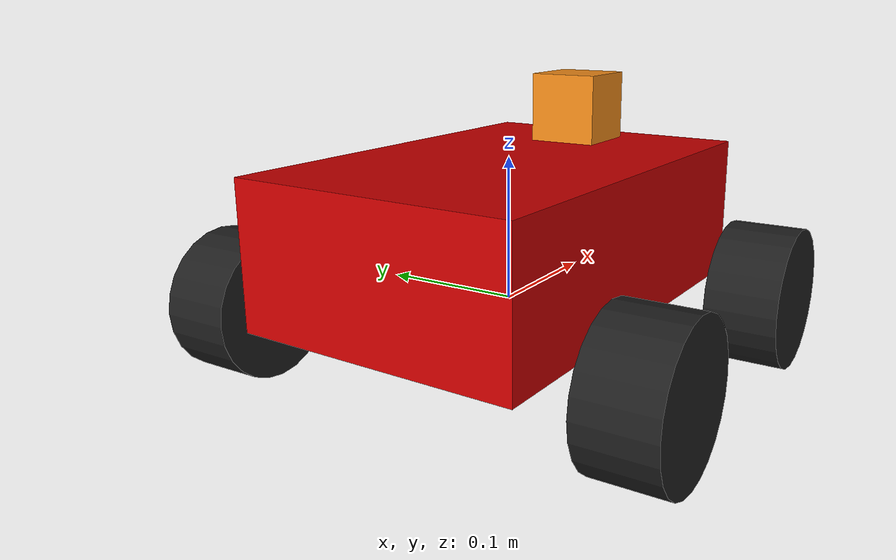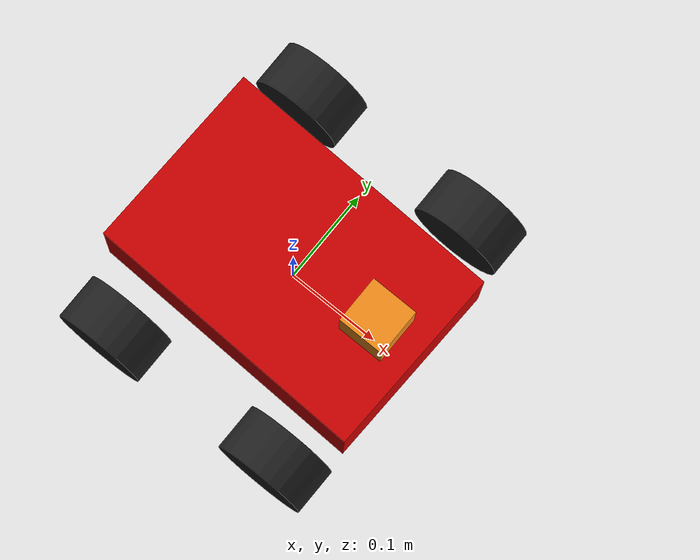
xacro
<?xml version="1.0"?>

<robot xmlns:xacro="http://www.ros.org/wiki/xacro" xmlns:sensor="http://playerstage.sourceforge.net/gazebo/xmlschema/#sensor" xmlns:controller="http://playerstage.sourceforge.net/gazebo/xmlschema/#controller" xmlns:interface="http://playerstage.sourceforge.net/gazebo/xmlschema/#interface" name="robot1_xacro">
    <gazebo reference="base_link">
        <material>Gazebo/Red</material>
    </gazebo>
    <gazebo reference="wheel_1">
        <material>Gazebo/Black</material>
    </gazebo>
    <gazebo reference="wheel_2">
        <material>Gazebo/Black</material>
    </gazebo>
    <gazebo reference="wheel_3">
        <material>Gazebo/Black</material>
    </gazebo>
    <gazebo reference="wheel_4">
        <material>Gazebo/Black</material>
    </gazebo>
    <gazebo reference="lidar_link">
        <material>Gazebo/Orange</material>
    </gazebo>
    <gazebo reference="camera_link">
        <material>Gazebo/Orange</material>
    </gazebo>

    <!-- 定义变量 -->
    <!-- 使用方法：length="${length_wheel}" -->
    <xacro:property name="length_wheel" value="0.05" />
    <xacro:property name="radius_wheel" value="0.05" />

    <!-- 与宏函数类似 -->
    <xacro:macro name="default_inertial" params="mass">
        <inertial>
            <mass value="${mass}" />
            <inertia ixx="1.0" ixy="0.0" ixz="0.0" iyy="1.0" iyz="0.0" izz="1.0" />
        </inertial>
    </xacro:macro>

    <link name="base_footprint">
        <visual>
            <geometry>
                <box size="0.001 0.001 0.001" />
            </geometry>
            <origin rpy="0 0 0" xyz="0 0 0" />
        </visual>
        <xacro:default_inertial mass="0.0001" />
    </link>

    <gazebo reference="base_footprint">
        <material>Gazebo/Green</material>
        <turnGravityOff>false</turnGravityOff>
    </gazebo>

    <joint name="base_footprint_joint" type="fixed">
        <origin xyz="0 0 0" />
        <parent link="base_footprint" />
        <child link="base_link" />
    </joint>

    <link name="base_link">
        <visual>
            <geometry>
                <box size="0.2 .3 .1" />
            </geometry>
            <origin rpy="0 0 1.54" xyz="0 0 0.05" />
            <material name="Red">
                <color rgba="0.8 0 0 1" />
            </material>
        </visual>

        <collision>
            <geometry>
                <box size="0.2 .3 0.1" />
            </geometry>
        </collision>

        <xacro:default_inertial mass="10" />

    </link>

    <link name="wheel_1">
        <visual>
            <geometry>
                <cylinder length="${length_wheel}" radius="${radius_wheel}" />
            </geometry>
            <origin rpy="0 0 0" xyz="0 0 0" />
            <material name="Black">
            </material>
        </visual>
        <collision>
            <geometry>
                <cylinder length="${length_wheel}" radius="${radius_wheel}" />
            </geometry>
        </collision>
        <xacro:default_inertial mass="1" />
    </link>

    <link name="wheel_2">
        <visual>
            <geometry>
                <cylinder length="${length_wheel}" radius="${radius_wheel}" />
            </geometry>
            <origin rpy="0 0 0" xyz="0 0 0" />
            <material name="Black" />
        </visual>
        <collision>
            <geometry>
                <cylinder length="${length_wheel}" radius="${radius_wheel}" />
            </geometry>
        </collision>
        <xacro:default_inertial mass="1" />

    </link>

    <link name="wheel_3">
        <visual>
            <geometry>
                <cylinder length="${length_wheel}" radius="${radius_wheel}" />
            </geometry>

            <origin rpy="0 0 0" xyz="0 0 0" />
            <material name="Black" />
        </visual>
        <collision>
            <geometry>
                <cylinder length="${length_wheel}" radius="${radius_wheel}" />
            </geometry>
        </collision>
        <xacro:default_inertial mass="1" />
    </link>

    <link name="wheel_4">
        <visual>
            <geometry>
                <cylinder length="${length_wheel}" radius="${radius_wheel}" />
            </geometry>
            <origin rpy="0 0 0" xyz="0 0 0" />
            <material name="Black" />
        </visual>
        <collision>
            <geometry>
                <cylinder length="${length_wheel}" radius="${radius_wheel}" />
            </geometry>
        </collision>
        <xacro:default_inertial mass="1" />

    </link>

    <joint name="base_to_wheel1" type="continuous">
        <parent link="base_link" />
        <child link="wheel_1" />
        <origin rpy="-1.5707 0 0" xyz="0.1 0.15 0" />
        <axis xyz="0 0 1" />
    </joint>

    <joint name="base_to_wheel2" type="continuous">
        <parent link="base_link" />
        <child link="wheel_2" />
        <origin rpy="-1.5707 0 0" xyz="-0.1 0.15 0" />
        <axis xyz="0 0 1" />
        <anchor xyz="0 0 0" />
        <limit effort="100" velocity="100" />
    </joint>

    <joint name="base_to_wheel3" type="continuous">
        <parent link="base_link" />
        <child link="wheel_3" />
        <origin rpy="-1.5707 0 0" xyz="0.1 -0.15 0" />
        <axis xyz="0 0 1" />

    </joint>

    <joint name="base_to_wheel4" type="continuous">
        <parent link="base_link" />
        <child link="wheel_4" />
        <origin rpy="-1.5707 0 0" xyz="-0.1 -0.15 0" />
        <axis xyz="0 0 1" />
    </joint>

    <!-- sensor lidar -->

    <!-- sensor camera  -->

    <link name="camera_link">
        <collision>
            <origin xyz="0.1 0 0.1" rpy="0 0 0" />
            <geometry>
                <box size="0.05 0.05 0.1" />
            </geometry>
        </collision>
        <visual>
            <origin xyz="0.1 0 0.1" rpy="0 0 0" />
            <geometry>
                <box size="0.05 0.05 0.1" />
            </geometry>
        </visual>
        <inertial>
            <mass value="1e-5" />
            <origin xyz="0 0 0" rpy="0 0 0" />
            <inertia ixx="1e-6" ixy="0" ixz="0" iyy="0" iyz="0" izz="1e-6" />
        </inertial>
    </link>

    <gazebo reference="camera_link">
        <sensor name="camera" type="camera">
            <update_rate>30.0</update_rate>
            <visualize>true</visualize>
            <camera>
                <horizontal_fov>1.047</horizontal_fov>
                <image>
                    <width>1280</width>
                    <height>720</height>
                </image>
                <clip>
                    <near>0.1</near>
                    <far>100</far>
                </clip>
                <noise>
                    <type>gaussian</type>
                    <mean>0.0</mean>
                    <stddev>0.001</stddev>
                </noise>

            </camera>
            <plugin name="gazebo_camera" filename="libgazebo_ros_camera.so">
                <alwaysOn>true</alwaysOn>
                <updateRate>0.0</updateRate>
                <cameraName>/camera</cameraName>
                <imageTopicName>image_raw</imageTopicName>
                <cameraInfoTopicName>camera_info</cameraInfoTopicName>
                <frameName>camera_link</frameName>
            </plugin>
        </sensor>
    </gazebo>

    <joint name="camera_joint" type="fixed">
        <origin xyz="0 0 0" />
        <parent link="base_link" />
        <child link="camera_link" />
        <material name="Orange"></material>
    </joint>

    <!-- robot driver -->
    <gazebo>
        <plugin name="skid_steer_drive_controller" filename="libgazebo_ros_skid_steer_drive.so">
          <updateRate>100.0</updateRate>
          <robotNamespace></robotNamespace>
          <leftFrontJoint>base_to_wheel1</leftFrontJoint>
          <rightFrontJoint>base_to_wheel3</rightFrontJoint>
          <leftRearJoint>base_to_wheel2</leftRearJoint>
          <rightRearJoint>base_to_wheel4</rightRearJoint>
          <wheelSeparation>4</wheelSeparation>
          <wheelDiameter>0.1</wheelDiameter>
          <commandTopic>cmd_vel</commandTopic>
          <odometryTopic>odom</odometryTopic>
          <robotBaseFrame>base_footprint</robotBaseFrame>
          <odometryFrame>odom</odometryFrame>
          <torque>1</torque>
          <topicName>cmd_vel</topicName>
          <broadcastTF>1</broadcastTF>
        </plugin>
      </gazebo>
    <!-- ros_control plugin -->
    <gazebo>
        <plugin name="gazebo_ros_control" filename="libgazebo_ros_control.so">
        <robotNamespace>/robot</robotNamespace>
        </plugin>
    </gazebo>

</robot>
